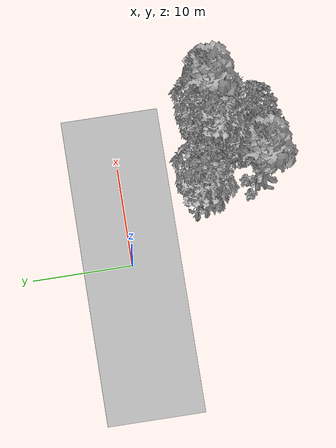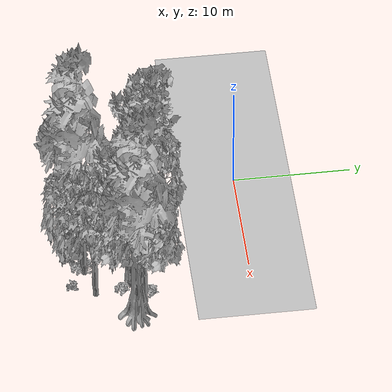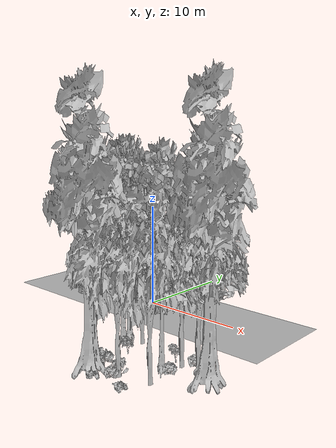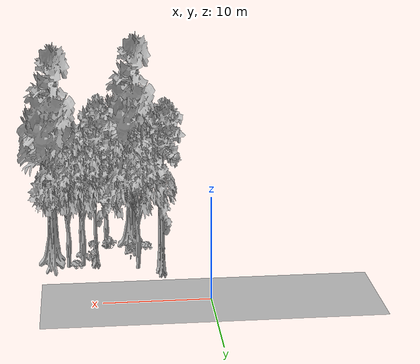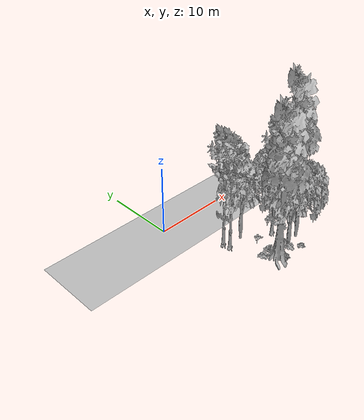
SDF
<sdf version="1.7">
 <world name="default">
  <model name="ground_plane">
   <static>1</static>
   <link name="link">
    <collision name="collision">
     <geometry><plane><normal>0 0 1</normal><size>100 100</size></plane></geometry>
     <surface><contact><ode><min_depth>0.01</min_depth><max_vel>0</max_vel></ode></contact></surface>
    </collision>
    <visual name="grass">
     <cast_shadows>0</cast_shadows>
     <geometry>
      <mesh>
       <scale>0.5814285714285714 0.18142857142857144 0.1</scale>
       <uri>file://grass_plane/meshes/grass_plane.dae</uri>
      </mesh>
     </geometry>
    </visual>
   </link>
  </model>
  <model name="Tree 45">
   <static>1</static>
   <pose>6.254879595795309 -8.087533036596627 0 1.57079 -0 0</pose>
   <link name="link">
    <collision name="collision">
     <geometry><mesh><scale>3.5 5 3.5</scale><uri>model://tree_2/meshes/tree_2.obj</uri></mesh></geometry>
    </collision>
    <visual name="visual">
     <geometry><mesh><scale>3.5 5 3.5</scale><uri>model://tree_2/meshes/tree_2.obj</uri></mesh></geometry>
    </visual>
   </link>
  </model>
  <model name="Tree 68">
   <static>1</static>
   <pose>3.9700672305717006 -7.225919293965219 0 1.57079 -0 0</pose>
   <link name="link">
    <collision name="collision">
     <geometry><mesh><scale>3.5 5 3.5</scale><uri>model://tree_9/meshes/tree_9.obj</uri></mesh></geometry>
    </collision>
    <visual name="visual">
     <geometry><mesh><scale>3.5 5 3.5</scale><uri>model://tree_9/meshes/tree_9.obj</uri></mesh></geometry>
    </visual>
   </link>
  </model>
  <model name="Tree 82">
   <static>1</static>
   <pose>11.81599630480519 -13.014541360410139 0 1.57079 -0 0</pose>
   <link name="link">
    <collision name="collision">
     <geometry><mesh><scale>3.5 5 3.5</scale><uri>model://tree_2/meshes/tree_2.obj</uri></mesh></geometry>
    </collision>
    <visual name="visual">
     <geometry><mesh><scale>3.5 5 3.5</scale><uri>model://tree_2/meshes/tree_2.obj</uri></mesh></geometry>
    </visual>
   </link>
  </model>
  <model name="Tree 131">
   <static>1</static>
   <pose>13.061796856050869 -9.050044094386179 0 1.57079 -0 0</pose>
   <link name="link">
    <collision name="collision">
     <geometry><mesh><scale>3.5 5 3.5</scale><uri>model://tree_2/meshes/tree_2.obj</uri></mesh></geometry>
    </collision>
    <visual name="visual">
     <geometry><mesh><scale>3.5 5 3.5</scale><uri>model://tree_2/meshes/tree_2.obj</uri></mesh></geometry>
    </visual>
   </link>
  </model>
  <model name="Tree 265">
   <static>1</static>
   <pose>4.1788617030005 -8.20965911218077 0 1.57079 -0 0</pose>
   <link name="link">
    <collision name="collision">
     <geometry><mesh><scale>3.5 5 3.5</scale><uri>model://tree_9/meshes/tree_9.obj</uri></mesh></geometry>
    </collision>
    <visual name="visual">
     <geometry><mesh><scale>3.5 5 3.5</scale><uri>model://tree_9/meshes/tree_9.obj</uri></mesh></geometry>
    </visual>
   </link>
  </model>
  <model name="Tree 292">
   <static>1</static>
   <pose>9.259776810502913 -13.703406144208914 0 1.57079 -0 0</pose>
   <link name="link">
    <collision name="collision">
     <geometry><mesh><scale>3.5 5 3.5</scale><uri>model://tree_2/meshes/tree_2.obj</uri></mesh></geometry>
    </collision>
    <visual name="visual">
     <geometry><mesh><scale>3.5 5 3.5</scale><uri>model://tree_2/meshes/tree_2.obj</uri></mesh></geometry>
    </visual>
   </link>
  </model>
  <model name="Tree 313">
   <static>1</static>
   <pose>14.636414659744048 -9.80338426311928 0 1.57079 -0 0</pose>
   <link name="link">
    <collision name="collision">
     <geometry><mesh><scale>3.5 5 3.5</scale><uri>model://tree_4/meshes/tree_4.obj</uri></mesh></geometry>
    </collision>
    <visual name="visual">
     <geometry><mesh><scale>3.5 5 3.5</scale><uri>model://tree_4/meshes/tree_4.obj</uri></mesh></geometry>
    </visual>
   </link>
  </model>
  <model name="Tree 356">
   <static>1</static>
   <pose>10.449671070529341 -10.153507124929192 0 1.57079 -0 0</pose>
   <link name="link">
    <collision name="collision">
     <geometry><mesh><scale>3.5 5 3.5</scale><uri>model://tree_9/meshes/tree_9.obj</uri></mesh></geometry>
    </collision>
    <visual name="visual">
     <geometry><mesh><scale>3.5 5 3.5</scale><uri>model://tree_9/meshes/tree_9.obj</uri></mesh></geometry>
    </visual>
   </link>
  </model>
  <model name="Tree 361">
   <static>1</static>
   <pose>11.635323944430176 -9.286060947993901 0 1.57079 -0 0</pose>
   <link name="link">
    <collision name="collision">
     <geometry><mesh><scale>3.5 5 3.5</scale><uri>model://tree_2/meshes/tree_2.obj</uri></mesh></geometry>
    </collision>
    <visual name="visual">
     <geometry><mesh><scale>3.5 5 3.5</scale><uri>model://tree_2/meshes/tree_2.obj</uri></mesh></geometry>
    </visual>
   </link>
  </model>
  <model name="Tree 370">
   <static>1</static>
   <pose>6.689757968169339 -14.141749777363321 0 1.57079 -0 0</pose>
   <link name="link">
    <collision name="collision">
     <geometry><mesh><scale>3.5 5 3.5</scale><uri>model://tree_4/meshes/tree_4.obj</uri></mesh></geometry>
    </collision>
    <visual name="visual">
     <geometry><mesh><scale>3.5 5 3.5</scale><uri>model://tree_4/meshes/tree_4.obj</uri></mesh></geometry>
    </visual>
   </link>
  </model>
  <model name="Bush 52">
   <static>1</static>
   <pose>6.892942985865886 -12.527006792313857 0 1.57079 -0 0</pose>
   <link name="link">
    <collision name="collision">
     <geometry><mesh><scale>2 2 2</scale><uri>model://bush_3/meshes/bush_3.obj</uri></mesh></geometry>
     <surface><contact><collide_without_contact>false</collide_without_contact></contact></surface>
    </collision>
    <visual name="visual">
     <geometry><mesh><scale>2 2 2</scale><uri>model://bush_3/meshes/bush_3.obj</uri></mesh></geometry>
    </visual>
   </link>
  </model>
  <model name="Bush 76">
   <static>1</static>
   <pose>9.155343189019632 -14.110397282105584 0 1.57079 -0 0</pose>
   <link name="link">
    <collision name="collision">
     <geometry><mesh><scale>2 2 2</scale><uri>model://bush_3/meshes/bush_3.obj</uri></mesh></geometry>
     <surface><contact><collide_without_contact>false</collide_without_contact></contact></surface>
    </collision>
    <visual name="visual">
     <geometry><mesh><scale>2 2 2</scale><uri>model://bush_3/meshes/bush_3.obj</uri></mesh></geometry>
    </visual>
   </link>
  </model>
  <model name="Bush 86">
   <static>1</static>
   <pose>6.631269887764049 -13.106826469307224 0 1.57079 -0 0</pose>
   <link name="link">
    <collision name="collision">
     <geometry><mesh><scale>2 2 2</scale><uri>model://bush_0/meshes/bush_0.obj</uri></mesh></geometry>
     <surface><contact><collide_without_contact>false</collide_without_contact></contact></surface>
    </collision>
    <visual name="visual">
     <geometry><mesh><scale>2 2 2</scale><uri>model://bush_0/meshes/bush_0.obj</uri></mesh></geometry>
    </visual>
   </link>
  </model>
  <model name="Bush 87">
   <static>1</static>
   <pose>5.372676563426452 -12.815803717892846 0 1.57079 -0 0</pose>
   <link name="link">
    <collision name="collision">
     <geometry><mesh><scale>2 2 2</scale><uri>model://bush_3/meshes/bush_3.obj</uri></mesh></geometry>
     <surface><contact><collide_without_contact>false</collide_without_contact></contact></surface>
    </collision>
    <visual name="visual">
     <geometry><mesh><scale>2 2 2</scale><uri>model://bush_3/meshes/bush_3.obj</uri></mesh></geometry>
    </visual>
   </link>
  </model>
  <model name="Bush 99">
   <static>1</static>
   <pose>9.054277031340199 -13.51694672759335 0 1.57079 -0 0</pose>
   <link name="link">
    <collision name="collision">
     <geometry><mesh><scale>2 2 2</scale><uri>model://bush_4/meshes/bush_4.obj</uri></mesh></geometry>
     <surface><contact><collide_without_contact>false</collide_without_contact></contact></surface>
    </collision>
    <visual name="visual">
     <geometry><mesh><scale>2 2 2</scale><uri>model://bush_4/meshes/bush_4.obj</uri></mesh></geometry>
    </visual>
   </link>
  </model>
  <model name="Bush 108">
   <static>1</static>
   <pose>10.884654178740604 -8.971740392852528 0 1.57079 -0 0</pose>
   <link name="link">
    <collision name="collision">
     <geometry><mesh><scale>2 2 2</scale><uri>model://bush_5/meshes/bush_5.obj</uri></mesh></geometry>
     <surface><contact><collide_without_contact>false</collide_without_contact></contact></surface>
    </collision>
    <visual name="visual">
     <geometry><mesh><scale>2 2 2</scale><uri>model://bush_5/meshes/bush_5.obj</uri></mesh></geometry>
    </visual>
   </link>
  </model>
  <model name="Bush 116">
   <static>1</static>
   <pose>12.447250522188185 -8.429753574729311 0 1.57079 -0 0</pose>
   <link name="link">
    <collision name="collision">
     <geometry><mesh><scale>2 2 2</scale><uri>model://bush_3/meshes/bush_3.obj</uri></mesh></geometry>
     <surface><contact><collide_without_contact>false</collide_without_contact></contact></surface>
    </collision>
    <visual name="visual">
     <geometry><mesh><scale>2 2 2</scale><uri>model://bush_3/meshes/bush_3.obj</uri></mesh></geometry>
    </visual>
   </link>
  </model>
  <model name="Bush 143">
   <static>1</static>
   <pose>7.020874943868478 -10.41490193201096 0 1.57079 -0 0</pose>
   <link name="link">
    <collision name="collision">
     <geometry><mesh><scale>2 2 2</scale><uri>model://bush_5/meshes/bush_5.obj</uri></mesh></geometry>
     <surface><contact><collide_without_contact>false</collide_without_contact></contact></surface>
    </collision>
    <visual name="visual">
     <geometry><mesh><scale>2 2 2</scale><uri>model://bush_5/meshes/bush_5.obj</uri></mesh></geometry>
    </visual>
   </link>
  </model>
  <model name="Bush 165">
   <static>1</static>
   <pose>11.89008341700444 -10.74806811192379 0 1.57079 -0 0</pose>
   <link name="link">
    <collision name="collision">
     <geometry><mesh><scale>2 2 2</scale><uri>model://bush_3/meshes/bush_3.obj</uri></mesh></geometry>
     <surface><contact><collide_without_contact>false</collide_without_contact></contact></surface>
    </collision>
    <visual name="visual">
     <geometry><mesh><scale>2 2 2</scale><uri>model://bush_3/meshes/bush_3.obj</uri></mesh></geometry>
    </visual>
   </link>
  </model>
  <model name="Bush 194">
   <static>1</static>
   <pose>10.65542534994944 -14.86353645415101 0 1.57079 -0 0</pose>
   <link name="link">
    <collision name="collision">
     <geometry><mesh><scale>2 2 2</scale><uri>model://bush_2/meshes/bush_2.obj</uri></mesh></geometry>
     <surface><contact><collide_without_contact>false</collide_without_contact></contact></surface>
    </collision>
    <visual name="visual">
     <geometry><mesh><scale>2 2 2</scale><uri>model://bush_2/meshes/bush_2.obj</uri></mesh></geometry>
    </visual>
   </link>
  </model>
  <model name="Bush 214">
   <static>1</static>
   <pose>7.541980566192642 -14.827318762657471 0 1.57079 -0 0</pose>
   <link name="link">
    <collision name="collision">
     <geometry><mesh><scale>2 2 2</scale><uri>model://bush_2/meshes/bush_2.obj</uri></mesh></geometry>
     <surface><contact><collide_without_contact>false</collide_without_contact></contact></surface>
    </collision>
    <visual name="visual">
     <geometry><mesh><scale>2 2 2</scale><uri>model://bush_2/meshes/bush_2.obj</uri></mesh></geometry>
    </visual>
   </link>
  </model>
 </world>
</sdf>
